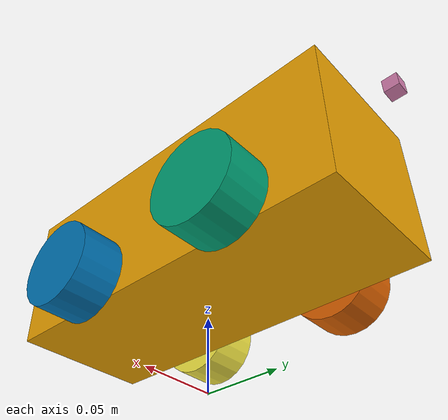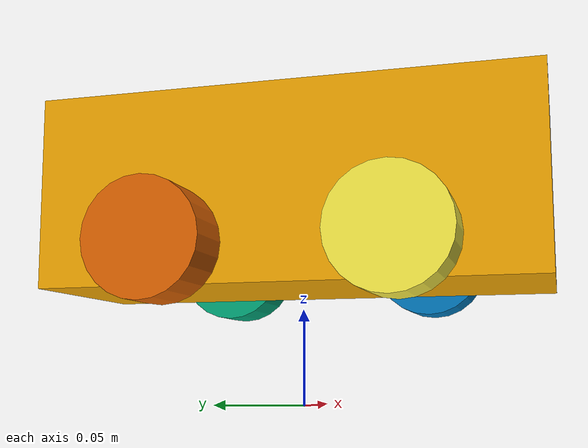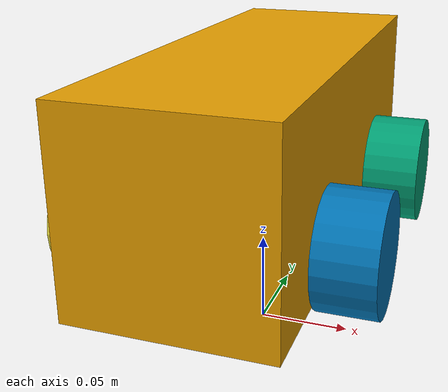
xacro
<?xml version='1.0'?>
<robot xmlns:xacro="http://www.ros.org/wiki/xacro" name="tolya">
  <xacro:include filename="base.xacro" />
  <xacro:include filename="wheel.xacro" />
  <xacro:include filename="sensors.xacro" />

  <xacro:base/>
  <xacro:wheel parent="base_link" origin_xyz="0.065 0.059 0.03" number="1"/>
  <xacro:wheel parent="base_link" origin_xyz="-0.065 -0.059 0.03" number="2"/>
  <xacro:wheel parent="base_link" origin_xyz="0.065 -0.059 0.03" number="3"/>
  <xacro:wheel parent="base_link" origin_xyz="-0.065 0.059 0.03" number="4"/>
  <xacro:sensors parent="base_link"/>
</robot>

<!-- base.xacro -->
<robot xmlns:xacro="http://www.ros.org/wiki/xacro">
    <xacro:macro name="base">
        <link name='base_link'>
            <inertial>
                <mass value="0.05"/>
                <origin xyz="0.0 0 0" rpy=" 0 0 0"/>
                <inertia
                    ixx="0.1" ixy="0" ixz="0"
                    iyy="0.1" iyz="0"
                    izz="0.1"
                />
            </inertial>

            <collision name='base_collision'>
                <origin xyz="0 0 0.06" rpy="0 0 0"/>
                <geometry>
                    <box size="0.15 0.257 0.1"/>
                </geometry>
            </collision>

            <visual name='base_visual'>
                <origin xyz="0 0 0.06" rpy="0 0 0"/>
                <geometry>
                    <box size="0.1 0.257 0.1"/>
                </geometry>
            </visual>
        </link>

        <link name="base_footprint">
            <visual name="base_footprint_visual">
                <origin xyz="0 0 0" rpy="0 0 0" />
                <geometry>
                    <box size="0.001 0.001 0.001" />
                </geometry>
            </visual>

            <inertial>
                <mass value="0.05"/>
                <origin xyz="0.0 0 0" rpy=" 0 0 0"/>
                <inertia
                    ixx="0" ixy="0" ixz="0"
                    iyy="0" iyz="0"
                    izz="0"
                />
            </inertial>

            <collision name='base_footprint_collision'>
                <origin xyz="0 0 0" rpy="0 0 0"/>
                <geometry>
                    <box size="0.001 0.001 0.001" />
                </geometry>
            </collision>
        </link>

        <joint name="base_link_joint" type="fixed">
            <origin xyz="0 0 0.05" rpy="0 0 0" />
            <parent link="base_footprint"/>
            <child link="base_link" />
        </joint>

        <gazebo>
            <plugin name="object_controller" filename="libgazebo_ros_planar_move.so">
                <commandTopic>cmd_vel</commandTopic>
                <odometryTopic>odom</odometryTopic>
                <odometryFrame>odom</odometryFrame>
                <odometryRate>20.0</odometryRate>
                <robotBaseFrame>base_footprint</robotBaseFrame>
            </plugin>
        </gazebo>
    </xacro:macro>
</robot>

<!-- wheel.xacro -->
<robot xmlns:xacro="http://www.ros.org/wiki/xacro">
    <xacro:macro name="wheel" params="origin_xyz number parent">
        <link name='wheel_link_${number}'>
            <inertial>
                <mass value="0.05"/>
                <origin xyz="0 0 0" rpy=" 0 0 0"/>
                <inertia
                    ixx="0.1" ixy="0" ixz="0"
                    iyy="0.1" iyz="0"
                    izz="0.1"
                />
            </inertial>

            <collision name='wheel_collision_${number}'>
                <origin xyz="0 0 0" rpy="0 0 0"/>
                <geometry>
                    <cylinder radius="0.03" length="0.03"/>
                </geometry>
            </collision>

            <visual name='wheel_visual_${number}'>
                <origin xyz="0 0 0" rpy="0 0 0"/>
                <geometry>
                    <cylinder radius="0.03" length="0.03"/>
                </geometry>
            </visual>
        </link>

        <joint name="wheel_joint_${number}" type="fixed">
            <origin rpy="0 ${pi/2} 0" xyz="${origin_xyz}" />
            <parent link="${parent}" />
            <child link="wheel_link_${number}" />
        </joint>
    </xacro:macro>
</robot>

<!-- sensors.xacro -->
<robot xmlns:xacro="http://www.ros.org/wiki/xacro">
    <xacro:include filename="sensors/imu.xacro" />
    <xacro:include filename="sensors/camera.xacro" />

    <xacro:macro name="sensors" params="parent">
        <xacro:imu_sensor parent="${parent}"/>
        <xacro:camera_sensor parent="${parent}"/>
    </xacro:macro>
</robot>

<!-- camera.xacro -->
<robot xmlns:xacro="http://www.ros.org/wiki/xacro">
    <xacro:macro name="camera_sensor" params="parent">
        <link name="camera_link">
            <collision>
                <origin xyz="0 0 0" rpy="0 0 0"/>
                <geometry>
                    <box size="0.01 0.01 0.01"/>
                </geometry>
            </collision>

            <visual>
                <origin xyz="0 0 0" rpy="0 0 0"/>
                <geometry>
                    <box size="0.01 0.01 0.01"/>
                </geometry>
            </visual>

            <inertial>
                <mass value="1e-5" />
                <origin xyz="0 0 0" rpy="0 0 0"/>
                <inertia ixx="1e-6" ixy="0" ixz="0" iyy="1e-6" iyz="0" izz="1e-6" />
            </inertial>
        </link>

        <joint name="camera_joint" type="fixed">
            <axis xyz="0 1 0" />
            <origin xyz="0 0.15 0.1" rpy="0 0 ${pi/2}"/>
            <parent link="${parent}"/>
            <child link="camera_link"/>
        </joint>

        <gazebo reference="camera_link">
            <sensor type="camera" name="camera">
                <update_rate>30.0</update_rate>
                <camera name="head">
                    <horizontal_fov>2.79252622</horizontal_fov>
                    <image>
                        <width>640</width>
                        <height>320</height>
                        <format>R8G8B8</format>
                    </image>
                    <clip>
                        <near>0.02</near>
                        <far>300</far>
                    </clip>
                    <noise>
                        <type>gaussian</type>
                        <mean>0.0</mean>
                        <stddev>0.007</stddev>
                    </noise>
                </camera>
                <plugin name="camera_controller" filename="libgazebo_ros_camera.so">
                    <alwaysOn>true</alwaysOn>
                    <updateRate>10.0</updateRate>
                    <cameraName>tolya/camera</cameraName>
                    <imageTopicName>image_raw</imageTopicName>
                    <cameraInfoTopicName>camera_info</cameraInfoTopicName>
                    <frameName>camera_link</frameName>
                    <hackBaseline>0.07</hackBaseline>
                    <distortionK1>0.0</distortionK1>
                    <distortionK2>0.0</distortionK2>
                    <distortionK3>0.0</distortionK3>
                    <distortionT1>0.0</distortionT1>
                    <distortionT2>0.0</distortionT2>
                </plugin>
            </sensor>
        </gazebo>
    </xacro:macro>
</robot>
